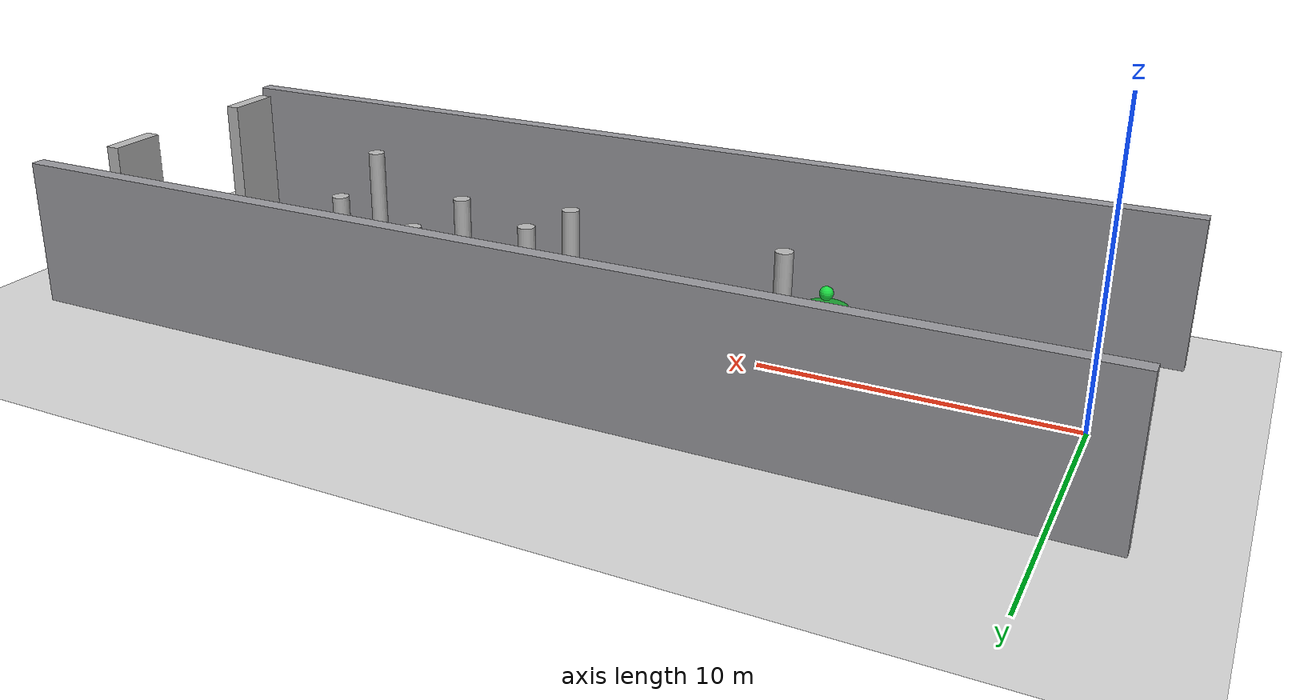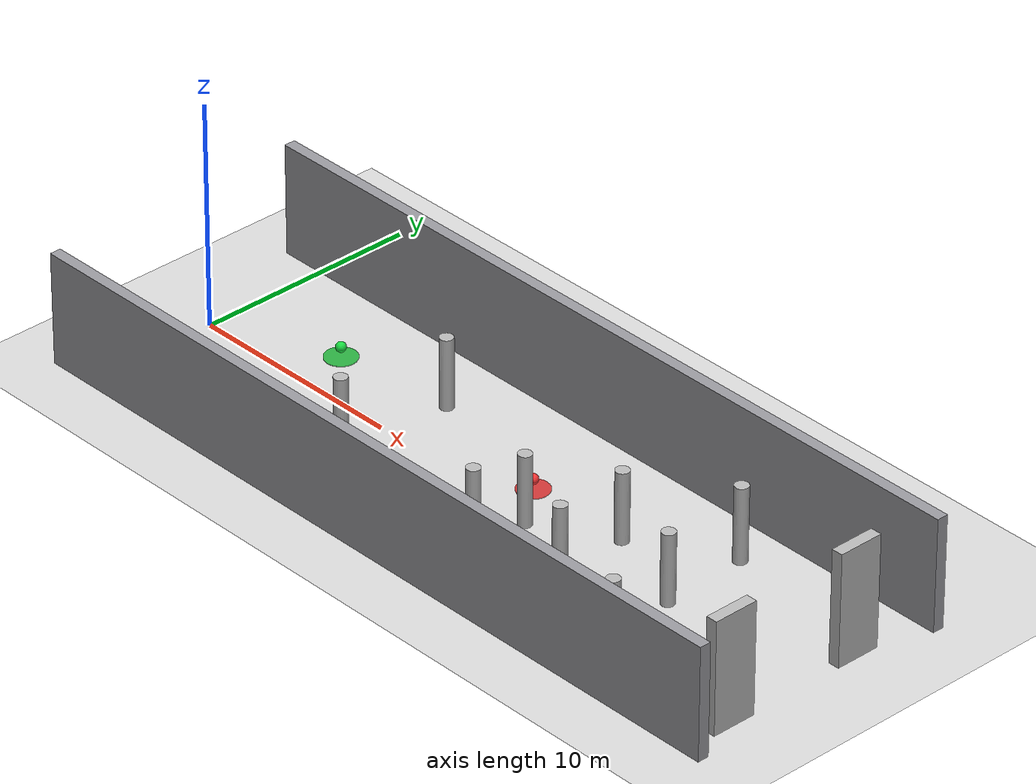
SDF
<sdf version="1.10">
 <world name="obstacle_avoidance">
  <physics type="ode">
   <max_step_size>0.0040000000000000001</max_step_size>
   <real_time_factor>1</real_time_factor>
   <real_time_update_rate>250</real_time_update_rate>
  </physics>
  <plugin name="gz::sim::systems::Physics" filename="gz-sim-physics-system"/>
  <plugin name="gz::sim::systems::UserCommands" filename="gz-sim-user-commands-system"/>
  <plugin name="gz::sim::systems::SceneBroadcaster" filename="gz-sim-scene-broadcaster-system"/>
  <plugin name="gz::sim::systems::Contact" filename="gz-sim-contact-system"/>
  <plugin name="gz::sim::systems::Imu" filename="gz-sim-imu-system"/>
  <plugin name="gz::sim::systems::AirPressure" filename="gz-sim-air-pressure-system"/>
  <plugin name="gz::sim::systems::AirSpeed" filename="gz-sim-air-speed-system"/>
  <plugin name="gz::sim::systems::ApplyLinkWrench" filename="gz-sim-apply-link-wrench-system"/>
  <plugin name="gz::sim::systems::NavSat" filename="gz-sim-navsat-system"/>
  <plugin name="gz::sim::systems::Magnetometer" filename="gz-sim-magnetometer-system"/>
  <plugin name="gz::sim::systems::Sensors" filename="gz-sim-sensors-system">
   <render_engine>ogre2</render_engine>
  </plugin>
  <plugin name="custom::OpticalFlowSystem" filename="libOpticalFlowSystem.so"/>
  <plugin name="custom::GstCameraSystem" filename="libGstCameraSystem.so"/>
  <gravity>0 0 -9.8000000000000007</gravity>
  <magnetic_field>6.0000000000000002e-06 2.3e-05 -4.1999999999999998e-05</magnetic_field>
  <atmosphere type="adiabatic"/>
  <scene>
   <grid>true</grid>
   <ambient>0.449999988 0.449999988 0.449999988 1</ambient>
   <background>0.74000001 0.769999981 0.819999993 1</background>
   <shadows>true</shadows>
  </scene>
  <spherical_coordinates>
   <surface_model>EARTH_WGS84</surface_model>
   <world_frame_orientation>ENU</world_frame_orientation>
   <latitude_deg>47.397971057728974</latitude_deg>
   <longitude_deg>8.5461637398001464</longitude_deg>
   <elevation>0</elevation>
   <heading_deg>0</heading_deg>
  </spherical_coordinates>
  <model name="ground_plane">
   <static>true</static>
   <link name="link">
    <collision name="collision">
     <geometry><plane><normal>0 0 1</normal><size>1 1</size></plane></geometry>
    </collision>
    <visual name="visual">
     <geometry><plane><normal>0 0 1</normal><size>120 120</size></plane></geometry>
     <material>
      <ambient>0.850000024 0.850000024 0.850000024 1</ambient>
      <diffuse>0.850000024 0.850000024 0.850000024 1</diffuse>
      <specular>0.400000006 0.400000006 0.400000006 1</specular>
     </material>
    </visual>
    <inertial>
     <mass>1</mass>
     <inertia><ixx>1</ixx><ixy>0</ixy><ixz>0</ixz><iyy>1</iyy><iyz>0</iyz><izz>1</izz></inertia>
    </inertial>
   </link>
  </model>
  <model name="lane_left_wall">
   <static>false</static>
   <pose>16 6 2.4999873987411871 -1.5452868411422002e-16 1.6520055580100191e-18 3.8614553100829292e-20</pose>
   <link name="link">
    <collision name="collision"><geometry><box><size>36 0.5 5</size></box></geometry></collision>
    <visual name="visual">
     <geometry><box><size>36 0.5 5</size></box></geometry>
     <material>
      <ambient>0.5 0.5 0.519999981 1</ambient>
      <diffuse>0.600000024 0.600000024 0.620000005 1</diffuse>
     </material>
    </visual>
    <inertial>
     <mass>1</mass>
     <inertia><ixx>1</ixx><ixy>0</ixy><ixz>0</ixz><iyy>1</iyy><iyz>0</iyz><izz>1</izz></inertia>
    </inertial>
   </link>
  </model>
  <model name="lane_right_wall">
   <static>false</static>
   <pose>16 -6 2.4999873987411871 -1.2772232356273819e-16 9.5017205798471489e-18 1.3757542690107612e-19</pose>
   <link name="link">
    <collision name="collision"><geometry><box><size>36 0.5 5</size></box></geometry></collision>
    <visual name="visual">
     <geometry><box><size>36 0.5 5</size></box></geometry>
     <material>
      <ambient>0.5 0.5 0.519999981 1</ambient>
      <diffuse>0.600000024 0.600000024 0.620000005 1</diffuse>
     </material>
    </visual>
    <inertial>
     <mass>1</mass>
     <inertia><ixx>1</ixx><ixy>0</ixy><ixz>0</ixz><iyy>1</iyy><iyz>0</iyz><izz>1</izz></inertia>
    </inertial>
   </link>
  </model>
  <model name="block_01">
   <static>false</static>
   <pose>10.649136543273926 2.8440299034118652 1.5999991316246109 1.2390992893777817e-16 1.6271891336310046e-16 -4.3350532458562395e-18</pose>
   <link name="link">
    <collision name="collision">
     <geometry>
      <cylinder><radius>0.29999999999999999</radius><length>3.2000000000000002</length></cylinder>
     </geometry>
    </collision>
    <visual name="visual">
     <geometry>
      <cylinder><radius>0.29999999999999999</radius><length>3.2000000000000002</length></cylinder>
     </geometry>
    </visual>
    <inertial>
     <mass>1</mass>
     <inertia><ixx>1</ixx><ixy>0</ixy><ixz>0</ixz><iyy>1</iyy><iyz>0</iyz><izz>1</izz></inertia>
    </inertial>
   </link>
  </model>
  <model name="block_02">
   <static>false</static>
   <pose>10 -2 1.5999991336223707 -2.4656638708241914e-17 2.5742117864282655e-17 -1.2283136786083452e-19</pose>
   <link name="link">
    <collision name="collision">
     <geometry>
      <cylinder><radius>0.29999999999999999</radius><length>3.2000000000000002</length></cylinder>
     </geometry>
    </collision>
    <visual name="visual">
     <geometry>
      <cylinder><radius>0.29999999999999999</radius><length>3.2000000000000002</length></cylinder>
     </geometry>
    </visual>
    <inertial>
     <mass>1</mass>
     <inertia><ixx>1</ixx><ixy>0</ixy><ixz>0</ixz><iyy>1</iyy><iyz>0</iyz><izz>1</izz></inertia>
    </inertial>
   </link>
  </model>
  <model name="block_03">
   <static>false</static>
   <pose>18.56410026550293 -0.39592325687408447 1.5541026437674046 1.3974099279726002e-16 6.3047125297748394e-16 7.2907799777347294e-18</pose>
   <link name="link">
    <collision name="collision">
     <geometry>
      <cylinder><radius>0.29999999999999999</radius><length>3.2000000000000002</length></cylinder>
     </geometry>
    </collision>
    <visual name="visual">
     <geometry>
      <cylinder><radius>0.29999999999999999</radius><length>3.2000000000000002</length></cylinder>
     </geometry>
    </visual>
    <inertial>
     <mass>1</mass>
     <inertia><ixx>1</ixx><ixy>0</ixy><ixz>0</ixz><iyy>1</iyy><iyz>0</iyz><izz>1</izz></inertia>
    </inertial>
   </link>
  </model>
  <model name="block_04">
   <static>false</static>
   <pose>18 -2.5 1.5999998682091516 -1.4788667598453273e-16 8.4721107756964608e-17 -1.8256497920508446e-18</pose>
   <link name="link">
    <collision name="collision">
     <geometry>
      <cylinder><radius>0.29999999999999999</radius><length>3.2000000000000002</length></cylinder>
     </geometry>
    </collision>
    <visual name="visual">
     <geometry>
      <cylinder><radius>0.29999999999999999</radius><length>3.2000000000000002</length></cylinder>
     </geometry>
    </visual>
    <inertial>
     <mass>1</mass>
     <inertia><ixx>1</ixx><ixy>0</ixy><ixz>0</ixz><iyy>1</iyy><iyz>0</iyz><izz>1</izz></inertia>
    </inertial>
   </link>
  </model>
  <model name="block_05">
   <static>false</static>
   <pose>22 -1.8141326904296875 1.5999992084714736 4.6923193704909417e-17 3.7529704028138409e-17 2.7513493654121682e-19</pose>
   <link name="link">
    <collision name="collision">
     <geometry>
      <cylinder><radius>0.29999999999999999</radius><length>3.2000000000000002</length></cylinder>
     </geometry>
    </collision>
    <visual name="visual">
     <geometry>
      <cylinder><radius>0.29999999999999999</radius><length>3.2000000000000002</length></cylinder>
     </geometry>
    </visual>
    <inertial>
     <mass>1</mass>
     <inertia><ixx>1</ixx><ixy>0</ixy><ixz>0</ixz><iyy>1</iyy><iyz>0</iyz><izz>1</izz></inertia>
    </inertial>
   </link>
  </model>
  <model name="block_06">
   <static>false</static>
   <pose>26 -0.096053503453731537 1.5999992089195469 -6.0962446325571124e-17 1.211569781145119e-16 6.3539107815722329e-18</pose>
   <link name="link">
    <collision name="collision">
     <geometry>
      <cylinder><radius>0.29999999999999999</radius><length>3.2000000000000002</length></cylinder>
     </geometry>
    </collision>
    <visual name="visual">
     <geometry>
      <cylinder><radius>0.29999999999999999</radius><length>3.2000000000000002</length></cylinder>
     </geometry>
    </visual>
    <inertial>
     <mass>1</mass>
     <inertia><ixx>1</ixx><ixy>0</ixy><ixz>0</ixz><iyy>1</iyy><iyz>0</iyz><izz>1</izz></inertia>
    </inertial>
   </link>
  </model>
  <model name="cyl_01">
   <static>false</static>
   <pose>21.884500503540039 1.4670225381851196 1.5999995910210867 1.0178424781443034e-17 7.6454955371257538e-18 -1.3913138258123053e-19</pose>
   <link name="link">
    <collision name="collision">
     <geometry>
      <cylinder><radius>0.29999999999999999</radius><length>3.2000000000000002</length></cylinder>
     </geometry>
    </collision>
    <visual name="visual">
     <geometry>
      <cylinder><radius>0.29999999999999999</radius><length>3.2000000000000002</length></cylinder>
     </geometry>
    </visual>
    <inertial>
     <mass>1</mass>
     <inertia><ixx>1</ixx><ixy>0</ixy><ixz>0</ixz><iyy>1</iyy><iyz>0</iyz><izz>1</izz></inertia>
    </inertial>
   </link>
  </model>
  <model name="cyl_02">
   <static>false</static>
   <pose>27.261613845825195 -4.0999999046325684 1.7999999525764545 -5.9371326519060589e-18 -7.1722102130193111e-18 7.9328489222984565e-20</pose>
   <link name="link">
    <collision name="collision">
     <geometry>
      <cylinder><radius>0.29999999999999999</radius><length>3.6000000000000001</length></cylinder>
     </geometry>
    </collision>
    <visual name="visual">
     <geometry>
      <cylinder><radius>0.29999999999999999</radius><length>3.6000000000000001</length></cylinder>
     </geometry>
    </visual>
    <inertial>
     <mass>1</mass>
     <inertia><ixx>1</ixx><ixy>0</ixy><ixz>0</ixz><iyy>1</iyy><iyz>0</iyz><izz>1</izz></inertia>
    </inertial>
   </link>
  </model>
  <model name="cyl_03">
   <static>false</static>
   <pose>25.833013534545898 3.7999999523162842 1.6999992089780487 -1.3863615792294e-18 9.6689000200296786e-18 -1.3910601754542106e-19</pose>
   <link name="link">
    <collision name="collision">
     <geometry>
      <cylinder><radius>0.29999999999999999</radius><length>3.3999999999999999</length></cylinder>
     </geometry>
    </collision>
    <visual name="visual">
     <geometry>
      <cylinder><radius>0.29999999999999999</radius><length>3.3999999999999999</length></cylinder>
     </geometry>
    </visual>
    <inertial>
     <mass>1</mass>
     <inertia><ixx>1</ixx><ixy>0</ixy><ixz>0</ixz><iyy>1</iyy><iyz>0</iyz><izz>1</izz></inertia>
    </inertial>
   </link>
  </model>
  <model name="start_marker">
   <static>true</static>
   <pose>7.9578952789306641 -0.16683000326156616 2.3400399684906006 0 0 0</pose>
   <link name="link">
    <gravity>false</gravity>
    <kinematic>true</kinematic>
    <visual name="base_ring">
     <geometry>
      <cylinder><radius>0.69999999999999996</radius><length>0.040000000000000001</length></cylinder>
     </geometry>
     <material>
      <ambient>0.100000001 0.699999988 0.200000003 0.850000024</ambient>
      <diffuse>0.100000001 0.699999988 0.200000003 0.850000024</diffuse>
      <specular>0.200000003 0.200000003 0.200000003 1</specular>
     </material>
    </visual>
    <visual name="center_sphere">
     <pose>0 0 0.45000000000000001 0 0 0</pose>
     <geometry><sphere><radius>0.22</radius></sphere></geometry>
     <material>
      <ambient>0.100000001 0.850000024 0.25 1</ambient>
      <diffuse>0.100000001 0.850000024 0.25 1</diffuse>
      <specular>0.300000012 0.300000012 0.300000012 1</specular>
     </material>
    </visual>
    <inertial>
     <mass>1</mass>
     <inertia><ixx>1</ixx><ixy>0</ixy><ixz>0</ixz><iyy>1</iyy><iyz>0</iyz><izz>1</izz></inertia>
    </inertial>
   </link>
  </model>
  <model name="goal_marker">
   <static>true</static>
   <pose>17.082199096679688 1.4147430658340454 0.019999999552965164 0 0 0</pose>
   <link name="link">
    <gravity>false</gravity>
    <kinematic>true</kinematic>
    <visual name="base_ring">
     <geometry>
      <cylinder><radius>0.69999999999999996</radius><length>0.040000000000000001</length></cylinder>
     </geometry>
     <material>
      <ambient>0.850000024 0.150000006 0.150000006 0.850000024</ambient>
      <diffuse>0.850000024 0.150000006 0.150000006 0.850000024</diffuse>
      <specular>0.200000003 0.200000003 0.200000003 1</specular>
     </material>
    </visual>
    <visual name="center_sphere">
     <pose>0 0 0.45000000000000001 0 0 0</pose>
     <geometry><sphere><radius>0.22</radius></sphere></geometry>
     <material>
      <ambient>0.949999988 0.200000003 0.200000003 1</ambient>
      <diffuse>0.949999988 0.200000003 0.200000003 1</diffuse>
      <specular>0.300000012 0.300000012 0.300000012 1</specular>
     </material>
    </visual>
    <inertial>
     <mass>1</mass>
     <inertia><ixx>1</ixx><ixy>0</ixy><ixz>0</ixz><iyy>1</iyy><iyz>0</iyz><izz>1</izz></inertia>
    </inertial>
   </link>
  </model>
  <model name="goal_gate_left">
   <static>false</static>
   <pose>33 2.5726053714752197 2.4999999991915041 -3.9922327254074612e-20 -4.2312978513537256e-20 -3.5847362636526968e-21</pose>
   <link name="link">
    <collision name="collision"><geometry><box><size>0.5 2 5</size></box></geometry></collision>
    <visual name="visual"><geometry><box><size>0.5 2 5</size></box></geometry></visual>
    <inertial>
     <mass>1</mass>
     <inertia><ixx>1</ixx><ixy>0</ixy><ixz>0</ixz><iyy>1</iyy><iyz>0</iyz><izz>1</izz></inertia>
    </inertial>
   </link>
  </model>
  <model name="goal_gate_right">
   <static>false</static>
   <pose>33 -3.731677770614624 2.4999999991915041 -9.1798873489316757e-21 -1.1388393840112043e-20 1.6855525301098009e-21</pose>
   <link name="link">
    <collision name="collision"><geometry><box><size>0.5 2 5</size></box></geometry></collision>
    <visual name="visual"><geometry><box><size>0.5 2 5</size></box></geometry></visual>
    <inertial>
     <mass>1</mass>
     <inertia><ixx>1</ixx><ixy>0</ixy><ixz>0</ixz><iyy>1</iyy><iyz>0</iyz><izz>1</izz></inertia>
    </inertial>
   </link>
  </model>
  <light name="sunUTC" type="directional">
   <pose>0 0 500 0 0 0</pose>
   <intensity>1</intensity>
   <direction>0.001 0.625 -0.78000000000000003</direction>
   <diffuse>0.899999976 0.899999976 0.899999976 1</diffuse>
   <specular>0.25 0.25 0.25 1</specular>
   <attenuation><range>2000</range><linear>0</linear><constant>1</constant><quadratic>0</quadratic></attenuation>
   <spot><inner_angle>0</inner_angle><outer_angle>0</outer_angle><falloff>0</falloff></spot>
  </light>
 </world>
</sdf>
